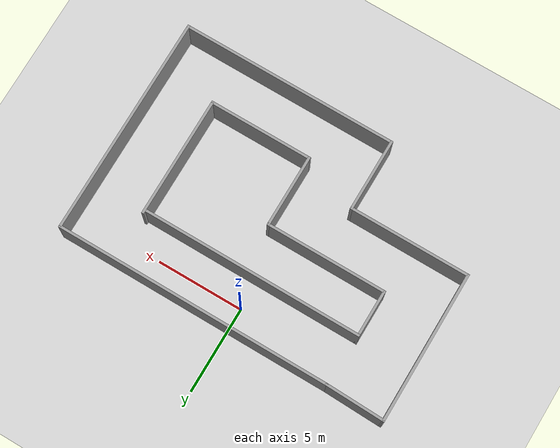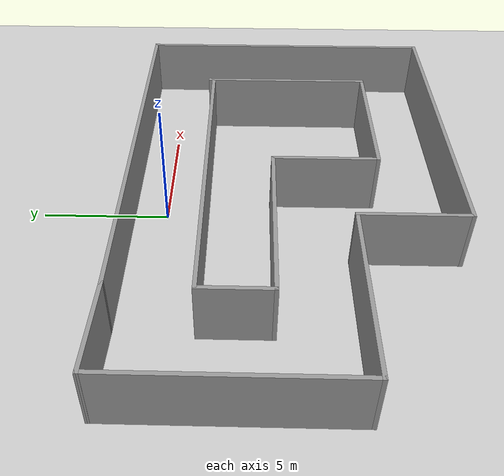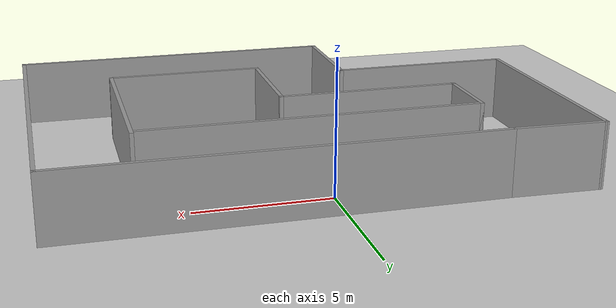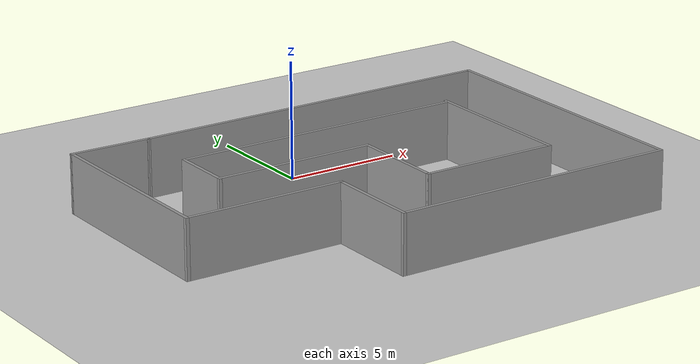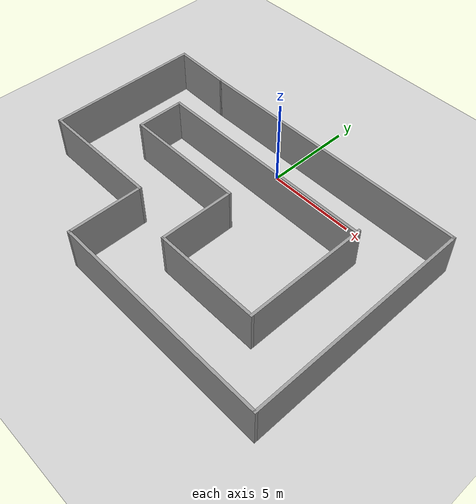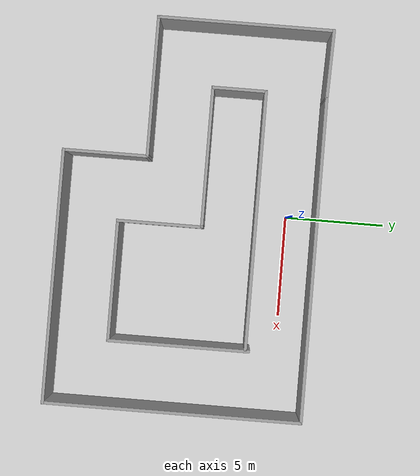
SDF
<sdf version="1.6">
 <world name="default">
  <light name="sun" type="directional">
   <pose>0 0 10 0 -0 0</pose>
   <diffuse>0.8 0.8 0.8 1</diffuse>
   <specular>0.2 0.2 0.2 1</specular>
   <attenuation>
    <range>1000</range>
    <constant>0.9</constant>
    <linear>0.01</linear>
    <quadratic>0.001</quadratic>
   </attenuation>
   <direction>-0.5 0.1 -0.9</direction>
  </light>
  <model name="ground_plane">
   <static>1</static>
   <link name="link">
    <collision name="collision">
     <geometry><plane><normal>0 0 1</normal><size>100 100</size></plane></geometry>
     <surface>
      <contact><collide_bitmask>65535</collide_bitmask></contact>
      <friction><ode><mu>100</mu><mu2>100</mu2></ode></friction>
     </surface>
    </collision>
    <visual name="visual">
     <cast_shadows>0</cast_shadows>
     <geometry><plane><normal>0 0 1</normal><size>100 100</size></plane></geometry>
     <material>
      <script><uri>file://media/materials/scripts/gazebo.material</uri><name>Gazebo/Grey</name></script>
     </material>
    </visual>
   </link>
  </model>
  <gravity>0 0 -9.8</gravity>
  <magnetic_field>6e-06 2.3e-05 -4.2e-05</magnetic_field>
  <atmosphere type="adiabatic"/>
  <physics name="default_physics" default="0" type="ode">
   <max_step_size>0.001</max_step_size>
   <real_time_factor>1</real_time_factor>
   <real_time_update_rate>1000</real_time_update_rate>
  </physics>
  <scene><ambient>0.4 0.4 0.4 1</ambient><background>0.7 0.7 0.7 1</background><shadows>1</shadows></scene>
  <audio><device>default</device></audio>
  <spherical_coordinates>
   <surface_model>EARTH_WGS84</surface_model>
   <latitude_deg>0</latitude_deg>
   <longitude_deg>0</longitude_deg>
   <elevation>0</elevation>
   <heading_deg>0</heading_deg>
  </spherical_coordinates>
  <model name="Untitled">
   <pose>0.345845 -4.862 0 0 -0 0</pose>
   <link name="Wall_39">
    <collision name="Wall_39_Collision">
     <geometry><box><size>7 0.15 2.5</size></box></geometry>
     <pose>0 0 1.25 0 -0 0</pose>
    </collision>
    <visual name="Wall_39_Visual">
     <pose>0 0 1.25 0 -0 0</pose>
     <geometry><box><size>7 0.15 2.5</size></box></geometry>
     <material>
      <script><uri>file://media/materials/scripts/gazebo.material</uri><name>Gazebo/Grey</name></script>
      <ambient>1 1 1 1</ambient>
     </material>
     <meta><layer>0</layer></meta>
    </visual>
    <pose>6.33744 -4.9e-05 0 0 -0 -1.5708</pose>
   </link>
   <link name="Wall_40">
    <collision name="Wall_40_Collision">
     <geometry><box><size>6 0.15 2.5</size></box></geometry>
     <pose>0 0 1.25 0 -0 0</pose>
    </collision>
    <visual name="Wall_40_Visual">
     <pose>0 0 1.25 0 -0 0</pose>
     <geometry><box><size>6 0.15 2.5</size></box></geometry>
     <material>
      <script><uri>file://media/materials/scripts/gazebo.material</uri><name>Gazebo/Grey</name></script>
      <ambient>1 1 1 1</ambient>
     </material>
     <meta><layer>0</layer></meta>
    </visual>
    <pose>3.41244 -3.42505 0 0 -0 3.14159</pose>
   </link>
   <link name="Wall_41">
    <collision name="Wall_41_Collision">
     <geometry><box><size>4.25 0.15 2.5</size></box></geometry>
     <pose>0 0 1.25 0 -0 0</pose>
    </collision>
    <visual name="Wall_41_Visual">
     <pose>0 0 1.25 0 -0 0</pose>
     <geometry><box><size>4.25 0.15 2.5</size></box></geometry>
     <material>
      <script><uri>file://media/materials/scripts/gazebo.material</uri><name>Gazebo/Grey</name></script>
      <ambient>1 1 1 1</ambient>
     </material>
     <meta><layer>0</layer></meta>
    </visual>
    <pose>0.487436 -1.37505 0 0 -0 1.5708</pose>
   </link>
   <link name="Wall_42">
    <collision name="Wall_42_Collision">
     <geometry><box><size>7 0.15 2.5</size></box></geometry>
     <pose>0 0 1.25 0 -0 0</pose>
    </collision>
    <visual name="Wall_42_Visual">
     <pose>0 0 1.25 0 -0 0</pose>
     <geometry><box><size>7 0.15 2.5</size></box></geometry>
     <material>
      <script><uri>file://media/materials/scripts/gazebo.material</uri><name>Gazebo/Grey</name></script>
      <ambient>1 1 1 1</ambient>
     </material>
     <meta><layer>0</layer></meta>
    </visual>
    <pose>-2.93756 0.674951 0 0 -0 3.14159</pose>
   </link>
   <link name="Wall_43">
    <collision name="Wall_43_Collision">
     <geometry><box><size>2.75 0.15 2.5</size></box></geometry>
     <pose>0 0 1.25 0 -0 0</pose>
    </collision>
    <visual name="Wall_43_Visual">
     <pose>0 0 1.25 0 -0 0</pose>
     <geometry><box><size>2.75 0.15 2.5</size></box></geometry>
     <material>
      <script><uri>file://media/materials/scripts/gazebo.material</uri><name>Gazebo/Grey</name></script>
      <ambient>1 1 1 1</ambient>
     </material>
     <meta><layer>0</layer></meta>
    </visual>
    <pose>-6.36256 1.97495 0 0 -0 1.5708</pose>
   </link>
   <link name="Wall_45">
    <collision name="Wall_45_Collision">
     <geometry><box><size>12.75 0.15 2.5</size></box></geometry>
     <pose>0 0 1.25 0 -0 0</pose>
    </collision>
    <visual name="Wall_45_Visual">
     <pose>0 0 1.25 0 -0 0</pose>
     <geometry><box><size>12.75 0.15 2.5</size></box></geometry>
     <material>
      <script><uri>file://media/materials/scripts/gazebo.material</uri><name>Gazebo/Grey</name></script>
      <ambient>1 1 1 1</ambient>
     </material>
     <meta><layer>0</layer></meta>
    </visual>
    <pose>-0.062564 3.27495 0 0 -0 0</pose>
   </link>
   <link name="Wall_47">
    <collision name="Wall_47_Collision">
     <geometry><box><size>16 0.15 2.5</size></box></geometry>
     <pose>0 0 1.25 0 -0 0</pose>
    </collision>
    <visual name="Wall_47_Visual">
     <pose>0 0 1.25 0 -0 0</pose>
     <geometry><box><size>16 0.15 2.5</size></box></geometry>
     <material>
      <script><uri>file://media/materials/scripts/gazebo.material</uri><name>Gazebo/Grey</name></script>
      <ambient>1 1 1 1</ambient>
     </material>
     <meta><layer>0</layer></meta>
    </visual>
    <pose>1.6761 6.2489 0 0 -0 0</pose>
   </link>
   <link name="Wall_48">
    <collision name="Wall_48_Collision">
     <geometry><box><size>12.75 0.15 2.5</size></box></geometry>
     <pose>0 0 1.25 0 -0 0</pose>
    </collision>
    <visual name="Wall_48_Visual">
     <pose>0 0 1.25 0 -0 0</pose>
     <geometry><box><size>12.75 0.15 2.5</size></box></geometry>
     <material>
      <script><uri>file://media/materials/scripts/gazebo.material</uri><name>Gazebo/Grey</name></script>
      <ambient>1 1 1 1</ambient>
     </material>
     <meta><layer>0</layer></meta>
    </visual>
    <pose>9.6011 -0.051102 0 0 -0 -1.5708</pose>
   </link>
   <link name="Wall_49">
    <collision name="Wall_49_Collision">
     <geometry><box><size>12.5 0.15 2.5</size></box></geometry>
     <pose>0 0 1.25 0 -0 0</pose>
    </collision>
    <visual name="Wall_49_Visual">
     <pose>0 0 1.25 0 -0 0</pose>
     <geometry><box><size>12.5 0.15 2.5</size></box></geometry>
     <material>
      <script><uri>file://media/materials/scripts/gazebo.material</uri><name>Gazebo/Grey</name></script>
      <ambient>1 1 1 1</ambient>
     </material>
     <meta><layer>0</layer></meta>
    </visual>
    <pose>3.4261 -6.3511 0 0 -0 3.14159</pose>
   </link>
   <link name="Wall_50">
    <collision name="Wall_50_Collision">
     <geometry><box><size>4.25 0.15 2.5</size></box></geometry>
     <pose>0 0 1.25 0 -0 0</pose>
    </collision>
    <visual name="Wall_50_Visual">
     <pose>0 0 1.25 0 -0 0</pose>
     <geometry><box><size>4.25 0.15 2.5</size></box></geometry>
     <material>
      <script><uri>file://media/materials/scripts/gazebo.material</uri><name>Gazebo/Grey</name></script>
      <ambient>1 1 1 1</ambient>
     </material>
     <meta><layer>0</layer></meta>
    </visual>
    <pose>-2.7489 -4.3011 0 0 -0 1.5708</pose>
   </link>
   <link name="Wall_51">
    <collision name="Wall_51_Collision">
     <geometry><box><size>7 0.15 2.5</size></box></geometry>
     <pose>0 0 1.25 0 -0 0</pose>
    </collision>
    <visual name="Wall_51_Visual">
     <pose>0 0 1.25 0 -0 0</pose>
     <geometry><box><size>7 0.15 2.5</size></box></geometry>
     <material>
      <script><uri>file://media/materials/scripts/gazebo.material</uri><name>Gazebo/Grey</name></script>
      <ambient>1 1 1 1</ambient>
     </material>
     <meta><layer>0</layer></meta>
    </visual>
    <pose>-6.1739 -2.2511 0 0 -0 3.14159</pose>
   </link>
   <link name="Wall_52">
    <collision name="Wall_52_Collision">
     <geometry><box><size>8.75 0.15 2.5</size></box></geometry>
     <pose>0 0 1.25 0 -0 0</pose>
    </collision>
    <visual name="Wall_52_Visual">
     <pose>0 0 1.25 0 -0 0</pose>
     <geometry><box><size>8.75 0.15 2.5</size></box></geometry>
     <material>
      <script><uri>file://media/materials/scripts/gazebo.material</uri><name>Gazebo/Grey</name></script>
      <ambient>1 1 1 1</ambient>
     </material>
     <meta><layer>0</layer></meta>
    </visual>
    <pose>-9.5989 2.0489 0 0 -0 1.5708</pose>
   </link>
   <link name="Wall_53">
    <collision name="Wall_53_Collision">
     <geometry><box><size>3.50149 0.15 2.5</size></box></geometry>
     <pose>0 0 1.25 0 -0 0</pose>
    </collision>
    <visual name="Wall_53_Visual">
     <pose>0 0 1.25 0 -0 0</pose>
     <geometry><box><size>3.50149 0.15 2.5</size></box></geometry>
     <material>
      <script><uri>file://media/materials/scripts/gazebo.material</uri><name>Gazebo/Grey</name></script>
      <ambient>1 1 1 1</ambient>
     </material>
     <meta><layer>0</layer></meta>
    </visual>
    <pose>-7.9239 6.2989 0 0 -0 -0.029842</pose>
   </link>
   <static>1</static>
  </model>
 </world>
</sdf>
